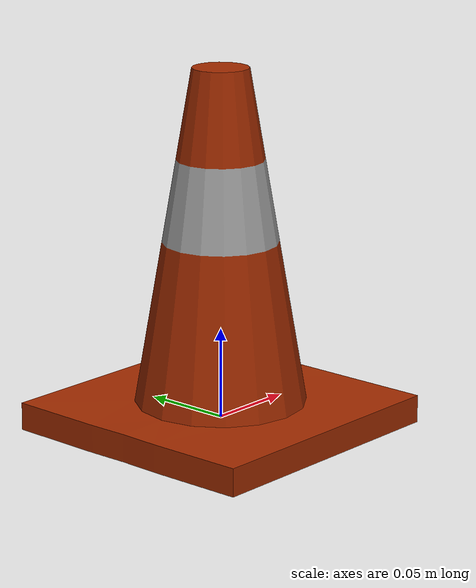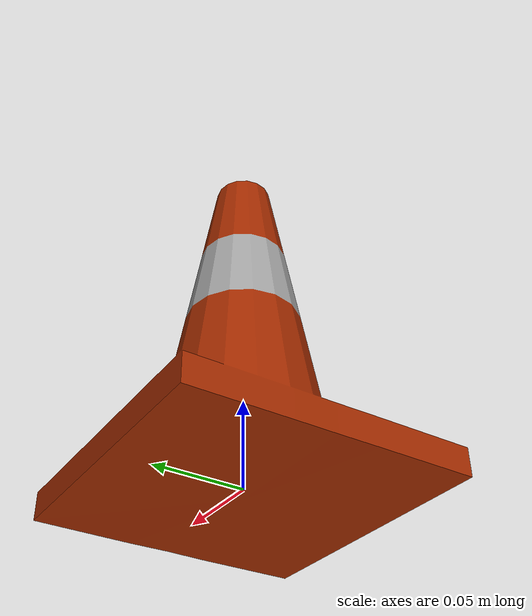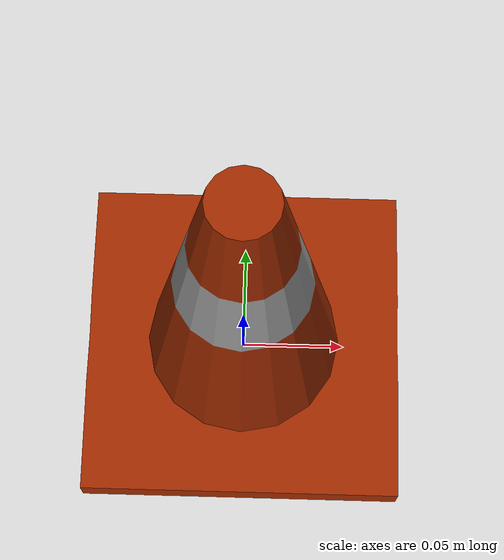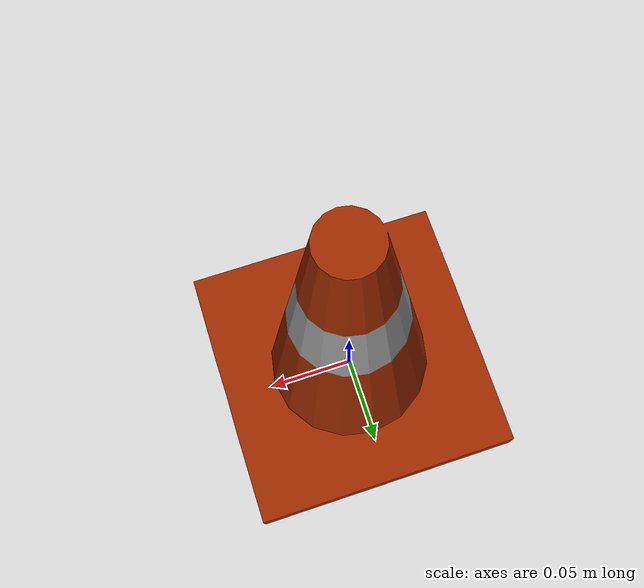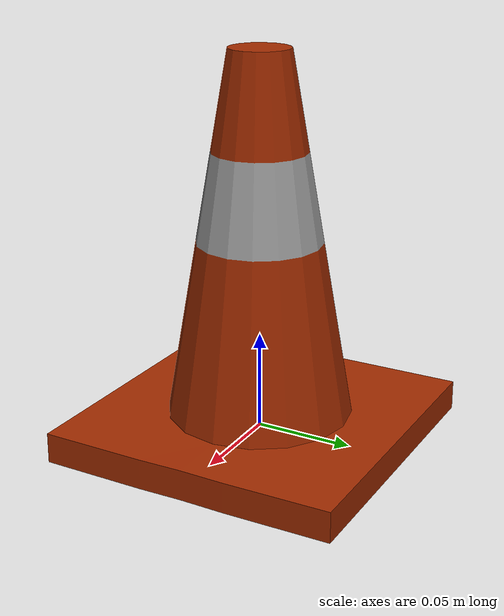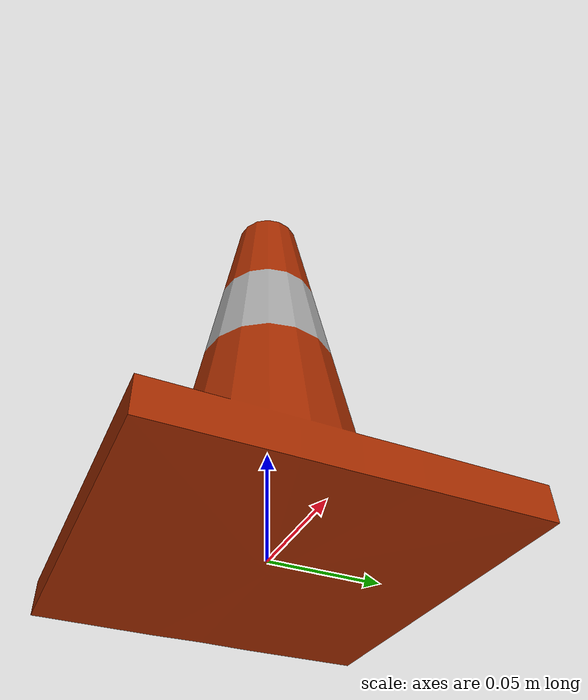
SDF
<?xml version="1.0"?>
<sdf version="1.4">
  <model name="trafficCone">
    <link name="link">
      <pose>0 0 0.01 0 0 0</pose>
      <visual name="visual">
        <geometry>
          <mesh>
            <uri>model://trafficCone/TrafficConeColor.dae</uri>
          </mesh>
        </geometry>
      </visual>
      <collision name="visual">
        <geometry>
          <mesh>
            <uri>model://trafficCone/TrafficConeColor.dae</uri>
          </mesh>
        </geometry>
      </collision>
    </link>
  </model>
</sdf>
